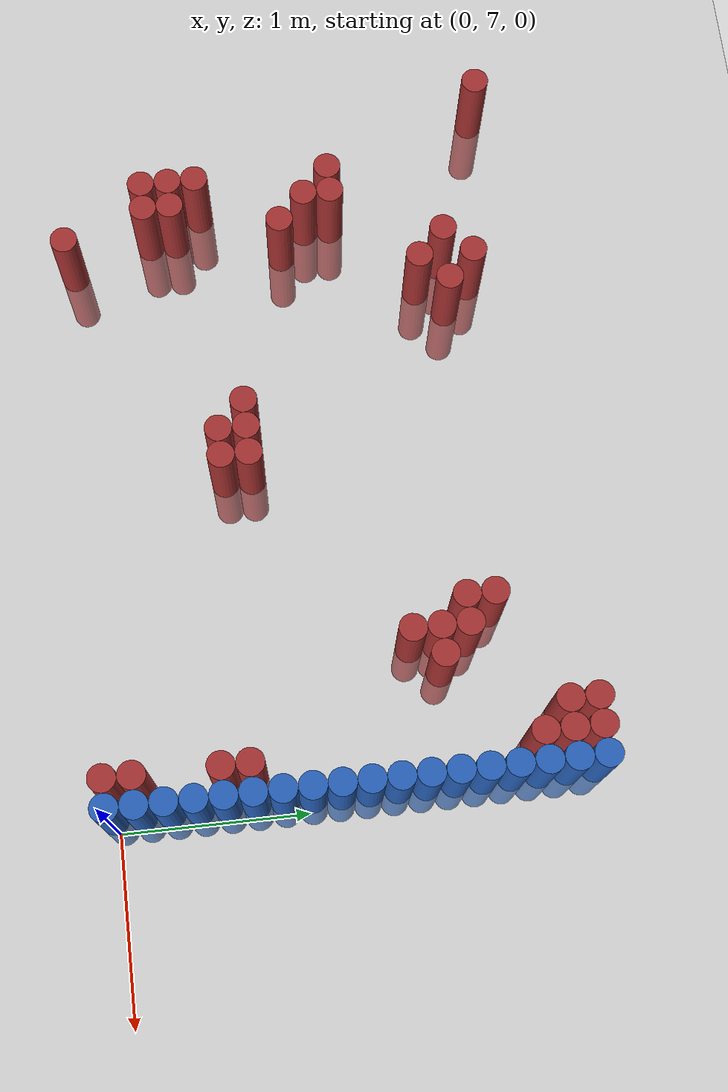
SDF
<sdf version="1.6">
 <world name="default">
  <model name="ground_plane">
   <static>1</static>
   <link name="link">
    <collision name="collision">
     <geometry><plane><normal>0 0 1</normal><size>100 100</size></plane></geometry>
     <surface><friction><ode><mu>100</mu><mu2>50</mu2></ode></friction></surface>
    </collision>
    <visual name="visual">
     <cast_shadows>0</cast_shadows>
     <geometry><plane><normal>0 0 1</normal><size>100 100</size></plane></geometry>
     <material>
      <script><uri>file://media/materials/scripts/gazebo.material</uri><name>Gazebo/Grey</name></script>
     </material>
    </visual>
   </link>
  </model>
  <model name="unit_cylinder_153">
   <static>1</static>
   <pose>-3.975000 9.375000 0.000000 0.000000 0.000000 0.000000</pose>
   <link name="link">
    <inertial>
     <mass>1</mass>
     <inertia><ixx>0.145833</ixx><ixy>0</ixy><ixz>0</ixz><iyy>0.145833</iyy><iyz>0</iyz><izz>0.125</izz></inertia>
    </inertial>
    <collision name="collision">
     <geometry><cylinder><radius>0.075000</radius><length>1</length></cylinder></geometry>
    </collision>
    <visual name="visual">
     <geometry><cylinder><radius>0.075000</radius><length>1</length></cylinder></geometry>
     <material>
      <ambient>0.648000 0.192000 0.192000 1</ambient>
      <diffuse>0.648000 0.192000 0.192000 1</diffuse>
     </material>
     <material>
      <script><name>Gazebo/Grey</name><uri>file://media/materials/scripts/gazebo.material</uri></script>
     </material>
    </visual>
   </link>
  </model>
  <model name="unit_cylinder_161">
   <static>1</static>
   <pose>-3.525000 7.425000 0.000000 0.000000 0.000000 0.000000</pose>
   <link name="link">
    <inertial>
     <mass>1</mass>
     <inertia><ixx>0.145833</ixx><ixy>0</ixy><ixz>0</ixz><iyy>0.145833</iyy><iyz>0</iyz><izz>0.125</izz></inertia>
    </inertial>
    <collision name="collision">
     <geometry><cylinder><radius>0.075000</radius><length>1</length></cylinder></geometry>
    </collision>
    <visual name="visual">
     <geometry><cylinder><radius>0.075000</radius><length>1</length></cylinder></geometry>
     <material>
      <ambient>0.648000 0.192000 0.192000 1</ambient>
      <diffuse>0.648000 0.192000 0.192000 1</diffuse>
     </material>
     <material>
      <script><name>Gazebo/Grey</name><uri>file://media/materials/scripts/gazebo.material</uri></script>
     </material>
    </visual>
   </link>
  </model>
  <model name="unit_cylinder_162">
   <static>1</static>
   <pose>-3.525000 7.575000 0.000000 0.000000 0.000000 0.000000</pose>
   <link name="link">
    <inertial>
     <mass>1</mass>
     <inertia><ixx>0.145833</ixx><ixy>0</ixy><ixz>0</ixz><iyy>0.145833</iyy><iyz>0</iyz><izz>0.125</izz></inertia>
    </inertial>
    <collision name="collision">
     <geometry><cylinder><radius>0.075000</radius><length>1</length></cylinder></geometry>
    </collision>
    <visual name="visual">
     <geometry><cylinder><radius>0.075000</radius><length>1</length></cylinder></geometry>
     <material>
      <ambient>0.648000 0.192000 0.192000 1</ambient>
      <diffuse>0.648000 0.192000 0.192000 1</diffuse>
     </material>
     <material>
      <script><name>Gazebo/Grey</name><uri>file://media/materials/scripts/gazebo.material</uri></script>
     </material>
    </visual>
   </link>
  </model>
  <model name="unit_cylinder_163">
   <static>1</static>
   <pose>-3.525000 7.725000 0.000000 0.000000 0.000000 0.000000</pose>
   <link name="link">
    <inertial>
     <mass>1</mass>
     <inertia><ixx>0.145833</ixx><ixy>0</ixy><ixz>0</ixz><iyy>0.145833</iyy><iyz>0</iyz><izz>0.125</izz></inertia>
    </inertial>
    <collision name="collision">
     <geometry><cylinder><radius>0.075000</radius><length>1</length></cylinder></geometry>
    </collision>
    <visual name="visual">
     <geometry><cylinder><radius>0.075000</radius><length>1</length></cylinder></geometry>
     <material>
      <ambient>0.648000 0.192000 0.192000 1</ambient>
      <diffuse>0.648000 0.192000 0.192000 1</diffuse>
     </material>
     <material>
      <script><name>Gazebo/Grey</name><uri>file://media/materials/scripts/gazebo.material</uri></script>
     </material>
    </visual>
   </link>
  </model>
  <model name="unit_cylinder_164">
   <static>1</static>
   <pose>-3.525000 8.475000 0.000000 0.000000 0.000000 0.000000</pose>
   <link name="link">
    <inertial>
     <mass>1</mass>
     <inertia><ixx>0.145833</ixx><ixy>0</ixy><ixz>0</ixz><iyy>0.145833</iyy><iyz>0</iyz><izz>0.125</izz></inertia>
    </inertial>
    <collision name="collision">
     <geometry><cylinder><radius>0.075000</radius><length>1</length></cylinder></geometry>
    </collision>
    <visual name="visual">
     <geometry><cylinder><radius>0.075000</radius><length>1</length></cylinder></geometry>
     <material>
      <ambient>0.648000 0.192000 0.192000 1</ambient>
      <diffuse>0.648000 0.192000 0.192000 1</diffuse>
     </material>
     <material>
      <script><name>Gazebo/Grey</name><uri>file://media/materials/scripts/gazebo.material</uri></script>
     </material>
    </visual>
   </link>
  </model>
  <model name="unit_cylinder_167">
   <static>1</static>
   <pose>-3.375000 7.425000 0.000000 0.000000 0.000000 0.000000</pose>
   <link name="link">
    <inertial>
     <mass>1</mass>
     <inertia><ixx>0.145833</ixx><ixy>0</ixy><ixz>0</ixz><iyy>0.145833</iyy><iyz>0</iyz><izz>0.125</izz></inertia>
    </inertial>
    <collision name="collision">
     <geometry><cylinder><radius>0.075000</radius><length>1</length></cylinder></geometry>
    </collision>
    <visual name="visual">
     <geometry><cylinder><radius>0.075000</radius><length>1</length></cylinder></geometry>
     <material>
      <ambient>0.648000 0.192000 0.192000 1</ambient>
      <diffuse>0.648000 0.192000 0.192000 1</diffuse>
     </material>
     <material>
      <script><name>Gazebo/Grey</name><uri>file://media/materials/scripts/gazebo.material</uri></script>
     </material>
    </visual>
   </link>
  </model>
  <model name="unit_cylinder_168">
   <static>1</static>
   <pose>-3.375000 7.575000 0.000000 0.000000 0.000000 0.000000</pose>
   <link name="link">
    <inertial>
     <mass>1</mass>
     <inertia><ixx>0.145833</ixx><ixy>0</ixy><ixz>0</ixz><iyy>0.145833</iyy><iyz>0</iyz><izz>0.125</izz></inertia>
    </inertial>
    <collision name="collision">
     <geometry><cylinder><radius>0.075000</radius><length>1</length></cylinder></geometry>
    </collision>
    <visual name="visual">
     <geometry><cylinder><radius>0.075000</radius><length>1</length></cylinder></geometry>
     <material>
      <ambient>0.648000 0.192000 0.192000 1</ambient>
      <diffuse>0.648000 0.192000 0.192000 1</diffuse>
     </material>
     <material>
      <script><name>Gazebo/Grey</name><uri>file://media/materials/scripts/gazebo.material</uri></script>
     </material>
    </visual>
   </link>
  </model>
  <model name="unit_cylinder_169">
   <static>1</static>
   <pose>-3.375000 8.325000 0.000000 0.000000 0.000000 0.000000</pose>
   <link name="link">
    <inertial>
     <mass>1</mass>
     <inertia><ixx>0.145833</ixx><ixy>0</ixy><ixz>0</ixz><iyy>0.145833</iyy><iyz>0</iyz><izz>0.125</izz></inertia>
    </inertial>
    <collision name="collision">
     <geometry><cylinder><radius>0.075000</radius><length>1</length></cylinder></geometry>
    </collision>
    <visual name="visual">
     <geometry><cylinder><radius>0.075000</radius><length>1</length></cylinder></geometry>
     <material>
      <ambient>0.648000 0.192000 0.192000 1</ambient>
      <diffuse>0.648000 0.192000 0.192000 1</diffuse>
     </material>
     <material>
      <script><name>Gazebo/Grey</name><uri>file://media/materials/scripts/gazebo.material</uri></script>
     </material>
    </visual>
   </link>
  </model>
  <model name="unit_cylinder_170">
   <static>1</static>
   <pose>-3.375000 8.475000 0.000000 0.000000 0.000000 0.000000</pose>
   <link name="link">
    <inertial>
     <mass>1</mass>
     <inertia><ixx>0.145833</ixx><ixy>0</ixy><ixz>0</ixz><iyy>0.145833</iyy><iyz>0</iyz><izz>0.125</izz></inertia>
    </inertial>
    <collision name="collision">
     <geometry><cylinder><radius>0.075000</radius><length>1</length></cylinder></geometry>
    </collision>
    <visual name="visual">
     <geometry><cylinder><radius>0.075000</radius><length>1</length></cylinder></geometry>
     <material>
      <ambient>0.648000 0.192000 0.192000 1</ambient>
      <diffuse>0.648000 0.192000 0.192000 1</diffuse>
     </material>
     <material>
      <script><name>Gazebo/Grey</name><uri>file://media/materials/scripts/gazebo.material</uri></script>
     </material>
    </visual>
   </link>
  </model>
  <model name="unit_cylinder_172">
   <static>1</static>
   <pose>-3.225000 6.975000 0.000000 0.000000 0.000000 0.000000</pose>
   <link name="link">
    <inertial>
     <mass>1</mass>
     <inertia><ixx>0.145833</ixx><ixy>0</ixy><ixz>0</ixz><iyy>0.145833</iyy><iyz>0</iyz><izz>0.125</izz></inertia>
    </inertial>
    <collision name="collision">
     <geometry><cylinder><radius>0.075000</radius><length>1</length></cylinder></geometry>
    </collision>
    <visual name="visual">
     <geometry><cylinder><radius>0.075000</radius><length>1</length></cylinder></geometry>
     <material>
      <ambient>0.648000 0.192000 0.192000 1</ambient>
      <diffuse>0.648000 0.192000 0.192000 1</diffuse>
     </material>
     <material>
      <script><name>Gazebo/Grey</name><uri>file://media/materials/scripts/gazebo.material</uri></script>
     </material>
    </visual>
   </link>
  </model>
  <model name="unit_cylinder_173">
   <static>1</static>
   <pose>-3.225000 8.175000 0.000000 0.000000 0.000000 0.000000</pose>
   <link name="link">
    <inertial>
     <mass>1</mass>
     <inertia><ixx>0.145833</ixx><ixy>0</ixy><ixz>0</ixz><iyy>0.145833</iyy><iyz>0</iyz><izz>0.125</izz></inertia>
    </inertial>
    <collision name="collision">
     <geometry><cylinder><radius>0.075000</radius><length>1</length></cylinder></geometry>
    </collision>
    <visual name="visual">
     <geometry><cylinder><radius>0.075000</radius><length>1</length></cylinder></geometry>
     <material>
      <ambient>0.648000 0.192000 0.192000 1</ambient>
      <diffuse>0.648000 0.192000 0.192000 1</diffuse>
     </material>
     <material>
      <script><name>Gazebo/Grey</name><uri>file://media/materials/scripts/gazebo.material</uri></script>
     </material>
    </visual>
   </link>
  </model>
  <model name="unit_cylinder_176">
   <static>1</static>
   <pose>-3.075000 9.075000 0.000000 0.000000 0.000000 0.000000</pose>
   <link name="link">
    <inertial>
     <mass>1</mass>
     <inertia><ixx>0.145833</ixx><ixy>0</ixy><ixz>0</ixz><iyy>0.145833</iyy><iyz>0</iyz><izz>0.125</izz></inertia>
    </inertial>
    <collision name="collision">
     <geometry><cylinder><radius>0.075000</radius><length>1</length></cylinder></geometry>
    </collision>
    <visual name="visual">
     <geometry><cylinder><radius>0.075000</radius><length>1</length></cylinder></geometry>
     <material>
      <ambient>0.648000 0.192000 0.192000 1</ambient>
      <diffuse>0.648000 0.192000 0.192000 1</diffuse>
     </material>
     <material>
      <script><name>Gazebo/Grey</name><uri>file://media/materials/scripts/gazebo.material</uri></script>
     </material>
    </visual>
   </link>
  </model>
  <model name="unit_cylinder_177">
   <static>1</static>
   <pose>-2.925000 8.925000 0.000000 0.000000 0.000000 0.000000</pose>
   <link name="link">
    <inertial>
     <mass>1</mass>
     <inertia><ixx>0.145833</ixx><ixy>0</ixy><ixz>0</ixz><iyy>0.145833</iyy><iyz>0</iyz><izz>0.125</izz></inertia>
    </inertial>
    <collision name="collision">
     <geometry><cylinder><radius>0.075000</radius><length>1</length></cylinder></geometry>
    </collision>
    <visual name="visual">
     <geometry><cylinder><radius>0.075000</radius><length>1</length></cylinder></geometry>
     <material>
      <ambient>0.648000 0.192000 0.192000 1</ambient>
      <diffuse>0.648000 0.192000 0.192000 1</diffuse>
     </material>
     <material>
      <script><name>Gazebo/Grey</name><uri>file://media/materials/scripts/gazebo.material</uri></script>
     </material>
    </visual>
   </link>
  </model>
  <model name="unit_cylinder_178">
   <static>1</static>
   <pose>-2.925000 9.225000 0.000000 0.000000 0.000000 0.000000</pose>
   <link name="link">
    <inertial>
     <mass>1</mass>
     <inertia><ixx>0.145833</ixx><ixy>0</ixy><ixz>0</ixz><iyy>0.145833</iyy><iyz>0</iyz><izz>0.125</izz></inertia>
    </inertial>
    <collision name="collision">
     <geometry><cylinder><radius>0.075000</radius><length>1</length></cylinder></geometry>
    </collision>
    <visual name="visual">
     <geometry><cylinder><radius>0.075000</radius><length>1</length></cylinder></geometry>
     <material>
      <ambient>0.648000 0.192000 0.192000 1</ambient>
      <diffuse>0.648000 0.192000 0.192000 1</diffuse>
     </material>
     <material>
      <script><name>Gazebo/Grey</name><uri>file://media/materials/scripts/gazebo.material</uri></script>
     </material>
    </visual>
   </link>
  </model>
  <model name="unit_cylinder_179">
   <static>1</static>
   <pose>-2.775000 9.075000 0.000000 0.000000 0.000000 0.000000</pose>
   <link name="link">
    <inertial>
     <mass>1</mass>
     <inertia><ixx>0.145833</ixx><ixy>0</ixy><ixz>0</ixz><iyy>0.145833</iyy><iyz>0</iyz><izz>0.125</izz></inertia>
    </inertial>
    <collision name="collision">
     <geometry><cylinder><radius>0.075000</radius><length>1</length></cylinder></geometry>
    </collision>
    <visual name="visual">
     <geometry><cylinder><radius>0.075000</radius><length>1</length></cylinder></geometry>
     <material>
      <ambient>0.648000 0.192000 0.192000 1</ambient>
      <diffuse>0.648000 0.192000 0.192000 1</diffuse>
     </material>
     <material>
      <script><name>Gazebo/Grey</name><uri>file://media/materials/scripts/gazebo.material</uri></script>
     </material>
    </visual>
   </link>
  </model>
  <model name="unit_cylinder_180">
   <static>1</static>
   <pose>-2.175000 7.875000 0.000000 0.000000 0.000000 0.000000</pose>
   <link name="link">
    <inertial>
     <mass>1</mass>
     <inertia><ixx>0.145833</ixx><ixy>0</ixy><ixz>0</ixz><iyy>0.145833</iyy><iyz>0</iyz><izz>0.125</izz></inertia>
    </inertial>
    <collision name="collision">
     <geometry><cylinder><radius>0.075000</radius><length>1</length></cylinder></geometry>
    </collision>
    <visual name="visual">
     <geometry><cylinder><radius>0.075000</radius><length>1</length></cylinder></geometry>
     <material>
      <ambient>0.648000 0.192000 0.192000 1</ambient>
      <diffuse>0.648000 0.192000 0.192000 1</diffuse>
     </material>
     <material>
      <script><name>Gazebo/Grey</name><uri>file://media/materials/scripts/gazebo.material</uri></script>
     </material>
    </visual>
   </link>
  </model>
  <model name="unit_cylinder_181">
   <static>1</static>
   <pose>-2.025000 7.725000 0.000000 0.000000 0.000000 0.000000</pose>
   <link name="link">
    <inertial>
     <mass>1</mass>
     <inertia><ixx>0.145833</ixx><ixy>0</ixy><ixz>0</ixz><iyy>0.145833</iyy><iyz>0</iyz><izz>0.125</izz></inertia>
    </inertial>
    <collision name="collision">
     <geometry><cylinder><radius>0.075000</radius><length>1</length></cylinder></geometry>
    </collision>
    <visual name="visual">
     <geometry><cylinder><radius>0.075000</radius><length>1</length></cylinder></geometry>
     <material>
      <ambient>0.648000 0.192000 0.192000 1</ambient>
      <diffuse>0.648000 0.192000 0.192000 1</diffuse>
     </material>
     <material>
      <script><name>Gazebo/Grey</name><uri>file://media/materials/scripts/gazebo.material</uri></script>
     </material>
    </visual>
   </link>
  </model>
  <model name="unit_cylinder_182">
   <static>1</static>
   <pose>-2.025000 7.875000 0.000000 0.000000 0.000000 0.000000</pose>
   <link name="link">
    <inertial>
     <mass>1</mass>
     <inertia><ixx>0.145833</ixx><ixy>0</ixy><ixz>0</ixz><iyy>0.145833</iyy><iyz>0</iyz><izz>0.125</izz></inertia>
    </inertial>
    <collision name="collision">
     <geometry><cylinder><radius>0.075000</radius><length>1</length></cylinder></geometry>
    </collision>
    <visual name="visual">
     <geometry><cylinder><radius>0.075000</radius><length>1</length></cylinder></geometry>
     <material>
      <ambient>0.648000 0.192000 0.192000 1</ambient>
      <diffuse>0.648000 0.192000 0.192000 1</diffuse>
     </material>
     <material>
      <script><name>Gazebo/Grey</name><uri>file://media/materials/scripts/gazebo.material</uri></script>
     </material>
    </visual>
   </link>
  </model>
  <model name="unit_cylinder_186">
   <static>1</static>
   <pose>-1.875000 7.725000 0.000000 0.000000 0.000000 0.000000</pose>
   <link name="link">
    <inertial>
     <mass>1</mass>
     <inertia><ixx>0.145833</ixx><ixy>0</ixy><ixz>0</ixz><iyy>0.145833</iyy><iyz>0</iyz><izz>0.125</izz></inertia>
    </inertial>
    <collision name="collision">
     <geometry><cylinder><radius>0.075000</radius><length>1</length></cylinder></geometry>
    </collision>
    <visual name="visual">
     <geometry><cylinder><radius>0.075000</radius><length>1</length></cylinder></geometry>
     <material>
      <ambient>0.648000 0.192000 0.192000 1</ambient>
      <diffuse>0.648000 0.192000 0.192000 1</diffuse>
     </material>
     <material>
      <script><name>Gazebo/Grey</name><uri>file://media/materials/scripts/gazebo.material</uri></script>
     </material>
    </visual>
   </link>
  </model>
  <model name="unit_cylinder_187">
   <static>1</static>
   <pose>-1.875000 7.875000 0.000000 0.000000 0.000000 0.000000</pose>
   <link name="link">
    <inertial>
     <mass>1</mass>
     <inertia><ixx>0.145833</ixx><ixy>0</ixy><ixz>0</ixz><iyy>0.145833</iyy><iyz>0</iyz><izz>0.125</izz></inertia>
    </inertial>
    <collision name="collision">
     <geometry><cylinder><radius>0.075000</radius><length>1</length></cylinder></geometry>
    </collision>
    <visual name="visual">
     <geometry><cylinder><radius>0.075000</radius><length>1</length></cylinder></geometry>
     <material>
      <ambient>0.648000 0.192000 0.192000 1</ambient>
      <diffuse>0.648000 0.192000 0.192000 1</diffuse>
     </material>
     <material>
      <script><name>Gazebo/Grey</name><uri>file://media/materials/scripts/gazebo.material</uri></script>
     </material>
    </visual>
   </link>
  </model>
  <model name="unit_cylinder_199">
   <static>1</static>
   <pose>-0.975000 8.925000 0.000000 0.000000 0.000000 0.000000</pose>
   <link name="link">
    <inertial>
     <mass>1</mass>
     <inertia><ixx>0.145833</ixx><ixy>0</ixy><ixz>0</ixz><iyy>0.145833</iyy><iyz>0</iyz><izz>0.125</izz></inertia>
    </inertial>
    <collision name="collision">
     <geometry><cylinder><radius>0.075000</radius><length>1</length></cylinder></geometry>
    </collision>
    <visual name="visual">
     <geometry><cylinder><radius>0.075000</radius><length>1</length></cylinder></geometry>
     <material>
      <ambient>0.648000 0.192000 0.192000 1</ambient>
      <diffuse>0.648000 0.192000 0.192000 1</diffuse>
     </material>
     <material>
      <script><name>Gazebo/Grey</name><uri>file://media/materials/scripts/gazebo.material</uri></script>
     </material>
    </visual>
   </link>
  </model>
  <model name="unit_cylinder_200">
   <static>1</static>
   <pose>-0.975000 9.075000 0.000000 0.000000 0.000000 0.000000</pose>
   <link name="link">
    <inertial>
     <mass>1</mass>
     <inertia><ixx>0.145833</ixx><ixy>0</ixy><ixz>0</ixz><iyy>0.145833</iyy><iyz>0</iyz><izz>0.125</izz></inertia>
    </inertial>
    <collision name="collision">
     <geometry><cylinder><radius>0.075000</radius><length>1</length></cylinder></geometry>
    </collision>
    <visual name="visual">
     <geometry><cylinder><radius>0.075000</radius><length>1</length></cylinder></geometry>
     <material>
      <ambient>0.648000 0.192000 0.192000 1</ambient>
      <diffuse>0.648000 0.192000 0.192000 1</diffuse>
     </material>
     <material>
      <script><name>Gazebo/Grey</name><uri>file://media/materials/scripts/gazebo.material</uri></script>
     </material>
    </visual>
   </link>
  </model>
  <model name="unit_cylinder_204">
   <static>1</static>
   <pose>-0.825000 8.625000 0.000000 0.000000 0.000000 0.000000</pose>
   <link name="link">
    <inertial>
     <mass>1</mass>
     <inertia><ixx>0.145833</ixx><ixy>0</ixy><ixz>0</ixz><iyy>0.145833</iyy><iyz>0</iyz><izz>0.125</izz></inertia>
    </inertial>
    <collision name="collision">
     <geometry><cylinder><radius>0.075000</radius><length>1</length></cylinder></geometry>
    </collision>
    <visual name="visual">
     <geometry><cylinder><radius>0.075000</radius><length>1</length></cylinder></geometry>
     <material>
      <ambient>0.648000 0.192000 0.192000 1</ambient>
      <diffuse>0.648000 0.192000 0.192000 1</diffuse>
     </material>
     <material>
      <script><name>Gazebo/Grey</name><uri>file://media/materials/scripts/gazebo.material</uri></script>
     </material>
    </visual>
   </link>
  </model>
  <model name="unit_cylinder_205">
   <static>1</static>
   <pose>-0.825000 8.775000 0.000000 0.000000 0.000000 0.000000</pose>
   <link name="link">
    <inertial>
     <mass>1</mass>
     <inertia><ixx>0.145833</ixx><ixy>0</ixy><ixz>0</ixz><iyy>0.145833</iyy><iyz>0</iyz><izz>0.125</izz></inertia>
    </inertial>
    <collision name="collision">
     <geometry><cylinder><radius>0.075000</radius><length>1</length></cylinder></geometry>
    </collision>
    <visual name="visual">
     <geometry><cylinder><radius>0.075000</radius><length>1</length></cylinder></geometry>
     <material>
      <ambient>0.648000 0.192000 0.192000 1</ambient>
      <diffuse>0.648000 0.192000 0.192000 1</diffuse>
     </material>
     <material>
      <script><name>Gazebo/Grey</name><uri>file://media/materials/scripts/gazebo.material</uri></script>
     </material>
    </visual>
   </link>
  </model>
  <model name="unit_cylinder_206">
   <static>1</static>
   <pose>-0.825000 8.925000 0.000000 0.000000 0.000000 0.000000</pose>
   <link name="link">
    <inertial>
     <mass>1</mass>
     <inertia><ixx>0.145833</ixx><ixy>0</ixy><ixz>0</ixz><iyy>0.145833</iyy><iyz>0</iyz><izz>0.125</izz></inertia>
    </inertial>
    <collision name="collision">
     <geometry><cylinder><radius>0.075000</radius><length>1</length></cylinder></geometry>
    </collision>
    <visual name="visual">
     <geometry><cylinder><radius>0.075000</radius><length>1</length></cylinder></geometry>
     <material>
      <ambient>0.648000 0.192000 0.192000 1</ambient>
      <diffuse>0.648000 0.192000 0.192000 1</diffuse>
     </material>
     <material>
      <script><name>Gazebo/Grey</name><uri>file://media/materials/scripts/gazebo.material</uri></script>
     </material>
    </visual>
   </link>
  </model>
  <model name="unit_cylinder_209">
   <static>1</static>
   <pose>-0.675000 8.775000 0.000000 0.000000 0.000000 0.000000</pose>
   <link name="link">
    <inertial>
     <mass>1</mass>
     <inertia><ixx>0.145833</ixx><ixy>0</ixy><ixz>0</ixz><iyy>0.145833</iyy><iyz>0</iyz><izz>0.125</izz></inertia>
    </inertial>
    <collision name="collision">
     <geometry><cylinder><radius>0.075000</radius><length>1</length></cylinder></geometry>
    </collision>
    <visual name="visual">
     <geometry><cylinder><radius>0.075000</radius><length>1</length></cylinder></geometry>
     <material>
      <ambient>0.648000 0.192000 0.192000 1</ambient>
      <diffuse>0.648000 0.192000 0.192000 1</diffuse>
     </material>
     <material>
      <script><name>Gazebo/Grey</name><uri>file://media/materials/scripts/gazebo.material</uri></script>
     </material>
    </visual>
   </link>
  </model>
  <model name="unit_cylinder_215">
   <static>1</static>
   <pose>-0.375000 9.375000 0.000000 0.000000 0.000000 0.000000</pose>
   <link name="link">
    <inertial>
     <mass>1</mass>
     <inertia><ixx>0.145833</ixx><ixy>0</ixy><ixz>0</ixz><iyy>0.145833</iyy><iyz>0</iyz><izz>0.125</izz></inertia>
    </inertial>
    <collision name="collision">
     <geometry><cylinder><radius>0.075000</radius><length>1</length></cylinder></geometry>
    </collision>
    <visual name="visual">
     <geometry><cylinder><radius>0.075000</radius><length>1</length></cylinder></geometry>
     <material>
      <ambient>0.648000 0.192000 0.192000 1</ambient>
      <diffuse>0.648000 0.192000 0.192000 1</diffuse>
     </material>
     <material>
      <script><name>Gazebo/Grey</name><uri>file://media/materials/scripts/gazebo.material</uri></script>
     </material>
    </visual>
   </link>
  </model>
  <model name="unit_cylinder_216">
   <static>1</static>
   <pose>-0.375000 9.525000 0.000000 0.000000 0.000000 0.000000</pose>
   <link name="link">
    <inertial>
     <mass>1</mass>
     <inertia><ixx>0.145833</ixx><ixy>0</ixy><ixz>0</ixz><iyy>0.145833</iyy><iyz>0</iyz><izz>0.125</izz></inertia>
    </inertial>
    <collision name="collision">
     <geometry><cylinder><radius>0.075000</radius><length>1</length></cylinder></geometry>
    </collision>
    <visual name="visual">
     <geometry><cylinder><radius>0.075000</radius><length>1</length></cylinder></geometry>
     <material>
      <ambient>0.648000 0.192000 0.192000 1</ambient>
      <diffuse>0.648000 0.192000 0.192000 1</diffuse>
     </material>
     <material>
      <script><name>Gazebo/Grey</name><uri>file://media/materials/scripts/gazebo.material</uri></script>
     </material>
    </visual>
   </link>
  </model>
  <model name="unit_cylinder_226">
   <static>1</static>
   <pose>-0.225000 6.975000 0.000000 0.000000 0.000000 0.000000</pose>
   <link name="link">
    <inertial>
     <mass>1</mass>
     <inertia><ixx>0.145833</ixx><ixy>0</ixy><ixz>0</ixz><iyy>0.145833</iyy><iyz>0</iyz><izz>0.125</izz></inertia>
    </inertial>
    <collision name="collision">
     <geometry><cylinder><radius>0.075000</radius><length>1</length></cylinder></geometry>
    </collision>
    <visual name="visual">
     <geometry><cylinder><radius>0.075000</radius><length>1</length></cylinder></geometry>
     <material>
      <ambient>0.648000 0.192000 0.192000 1</ambient>
      <diffuse>0.648000 0.192000 0.192000 1</diffuse>
     </material>
     <material>
      <script><name>Gazebo/Grey</name><uri>file://media/materials/scripts/gazebo.material</uri></script>
     </material>
    </visual>
   </link>
  </model>
  <model name="unit_cylinder_227">
   <static>1</static>
   <pose>-0.225000 7.125000 0.000000 0.000000 0.000000 0.000000</pose>
   <link name="link">
    <inertial>
     <mass>1</mass>
     <inertia><ixx>0.145833</ixx><ixy>0</ixy><ixz>0</ixz><iyy>0.145833</iyy><iyz>0</iyz><izz>0.125</izz></inertia>
    </inertial>
    <collision name="collision">
     <geometry><cylinder><radius>0.075000</radius><length>1</length></cylinder></geometry>
    </collision>
    <visual name="visual">
     <geometry><cylinder><radius>0.075000</radius><length>1</length></cylinder></geometry>
     <material>
      <ambient>0.648000 0.192000 0.192000 1</ambient>
      <diffuse>0.648000 0.192000 0.192000 1</diffuse>
     </material>
     <material>
      <script><name>Gazebo/Grey</name><uri>file://media/materials/scripts/gazebo.material</uri></script>
     </material>
    </visual>
   </link>
  </model>
  <model name="unit_cylinder_228">
   <static>1</static>
   <pose>-0.225000 7.575000 0.000000 0.000000 0.000000 0.000000</pose>
   <link name="link">
    <inertial>
     <mass>1</mass>
     <inertia><ixx>0.145833</ixx><ixy>0</ixy><ixz>0</ixz><iyy>0.145833</iyy><iyz>0</iyz><izz>0.125</izz></inertia>
    </inertial>
    <collision name="collision">
     <geometry><cylinder><radius>0.075000</radius><length>1</length></cylinder></geometry>
    </collision>
    <visual name="visual">
     <geometry><cylinder><radius>0.075000</radius><length>1</length></cylinder></geometry>
     <material>
      <ambient>0.648000 0.192000 0.192000 1</ambient>
      <diffuse>0.648000 0.192000 0.192000 1</diffuse>
     </material>
     <material>
      <script><name>Gazebo/Grey</name><uri>file://media/materials/scripts/gazebo.material</uri></script>
     </material>
    </visual>
   </link>
  </model>
  <model name="unit_cylinder_229">
   <static>1</static>
   <pose>-0.225000 7.725000 0.000000 0.000000 0.000000 0.000000</pose>
   <link name="link">
    <inertial>
     <mass>1</mass>
     <inertia><ixx>0.145833</ixx><ixy>0</ixy><ixz>0</ixz><iyy>0.145833</iyy><iyz>0</iyz><izz>0.125</izz></inertia>
    </inertial>
    <collision name="collision">
     <geometry><cylinder><radius>0.075000</radius><length>1</length></cylinder></geometry>
    </collision>
    <visual name="visual">
     <geometry><cylinder><radius>0.075000</radius><length>1</length></cylinder></geometry>
     <material>
      <ambient>0.648000 0.192000 0.192000 1</ambient>
      <diffuse>0.648000 0.192000 0.192000 1</diffuse>
     </material>
     <material>
      <script><name>Gazebo/Grey</name><uri>file://media/materials/scripts/gazebo.material</uri></script>
     </material>
    </visual>
   </link>
  </model>
  <model name="unit_cylinder_230">
   <static>1</static>
   <pose>-0.225000 9.225000 0.000000 0.000000 0.000000 0.000000</pose>
   <link name="link">
    <inertial>
     <mass>1</mass>
     <inertia><ixx>0.145833</ixx><ixy>0</ixy><ixz>0</ixz><iyy>0.145833</iyy><iyz>0</iyz><izz>0.125</izz></inertia>
    </inertial>
    <collision name="collision">
     <geometry><cylinder><radius>0.075000</radius><length>1</length></cylinder></geometry>
    </collision>
    <visual name="visual">
     <geometry><cylinder><radius>0.075000</radius><length>1</length></cylinder></geometry>
     <material>
      <ambient>0.648000 0.192000 0.192000 1</ambient>
      <diffuse>0.648000 0.192000 0.192000 1</diffuse>
     </material>
     <material>
      <script><name>Gazebo/Grey</name><uri>file://media/materials/scripts/gazebo.material</uri></script>
     </material>
    </visual>
   </link>
  </model>
  <model name="unit_cylinder_231">
   <static>1</static>
   <pose>-0.225000 9.375000 0.000000 0.000000 0.000000 0.000000</pose>
   <link name="link">
    <inertial>
     <mass>1</mass>
     <inertia><ixx>0.145833</ixx><ixy>0</ixy><ixz>0</ixz><iyy>0.145833</iyy><iyz>0</iyz><izz>0.125</izz></inertia>
    </inertial>
    <collision name="collision">
     <geometry><cylinder><radius>0.075000</radius><length>1</length></cylinder></geometry>
    </collision>
    <visual name="visual">
     <geometry><cylinder><radius>0.075000</radius><length>1</length></cylinder></geometry>
     <material>
      <ambient>0.648000 0.192000 0.192000 1</ambient>
      <diffuse>0.648000 0.192000 0.192000 1</diffuse>
     </material>
     <material>
      <script><name>Gazebo/Grey</name><uri>file://media/materials/scripts/gazebo.material</uri></script>
     </material>
    </visual>
   </link>
  </model>
  <model name="unit_cylinder_232">
   <static>1</static>
   <pose>-0.225000 9.525000 0.000000 0.000000 0.000000 0.000000</pose>
   <link name="link">
    <inertial>
     <mass>1</mass>
     <inertia><ixx>0.145833</ixx><ixy>0</ixy><ixz>0</ixz><iyy>0.145833</iyy><iyz>0</iyz><izz>0.125</izz></inertia>
    </inertial>
    <collision name="collision">
     <geometry><cylinder><radius>0.075000</radius><length>1</length></cylinder></geometry>
    </collision>
    <visual name="visual">
     <geometry><cylinder><radius>0.075000</radius><length>1</length></cylinder></geometry>
     <material>
      <ambient>0.648000 0.192000 0.192000 1</ambient>
      <diffuse>0.648000 0.192000 0.192000 1</diffuse>
     </material>
     <material>
      <script><name>Gazebo/Grey</name><uri>file://media/materials/scripts/gazebo.material</uri></script>
     </material>
    </visual>
   </link>
  </model>
  <model name="unit_cylinder_245">
   <static>1</static>
   <pose>-0.075000 6.975000 0.000000 0.000000 0.000000 0.000000</pose>
   <link name="link">
    <inertial>
     <mass>1</mass>
     <inertia><ixx>0.145833</ixx><ixy>0</ixy><ixz>0</ixz><iyy>0.145833</iyy><iyz>0</iyz><izz>0.125</izz></inertia>
    </inertial>
    <collision name="collision">
     <geometry><cylinder><radius>0.075000</radius><length>1</length></cylinder></geometry>
    </collision>
    <visual name="visual">
     <geometry><cylinder><radius>0.075000</radius><length>1</length></cylinder></geometry>
     <material>
      <ambient>0.152000 0.379000 0.720000 1</ambient>
      <diffuse>0.152000 0.379000 0.720000 1</diffuse>
     </material>
     <material>
      <script><name>Gazebo/Grey</name><uri>file://media/materials/scripts/gazebo.material</uri></script>
     </material>
    </visual>
   </link>
  </model>
  <model name="unit_cylinder_246">
   <static>1</static>
   <pose>-0.075000 7.125000 0.000000 0.000000 0.000000 0.000000</pose>
   <link name="link">
    <inertial>
     <mass>1</mass>
     <inertia><ixx>0.145833</ixx><ixy>0</ixy><ixz>0</ixz><iyy>0.145833</iyy><iyz>0</iyz><izz>0.125</izz></inertia>
    </inertial>
    <collision name="collision">
     <geometry><cylinder><radius>0.075000</radius><length>1</length></cylinder></geometry>
    </collision>
    <visual name="visual">
     <geometry><cylinder><radius>0.075000</radius><length>1</length></cylinder></geometry>
     <material>
      <ambient>0.152000 0.379000 0.720000 1</ambient>
      <diffuse>0.152000 0.379000 0.720000 1</diffuse>
     </material>
     <material>
      <script><name>Gazebo/Grey</name><uri>file://media/materials/scripts/gazebo.material</uri></script>
     </material>
    </visual>
   </link>
  </model>
  <model name="unit_cylinder_247">
   <static>1</static>
   <pose>-0.075000 7.275000 0.000000 0.000000 0.000000 0.000000</pose>
   <link name="link">
    <inertial>
     <mass>1</mass>
     <inertia><ixx>0.145833</ixx><ixy>0</ixy><ixz>0</ixz><iyy>0.145833</iyy><iyz>0</iyz><izz>0.125</izz></inertia>
    </inertial>
    <collision name="collision">
     <geometry><cylinder><radius>0.075000</radius><length>1</length></cylinder></geometry>
    </collision>
    <visual name="visual">
     <geometry><cylinder><radius>0.075000</radius><length>1</length></cylinder></geometry>
     <material>
      <ambient>0.152000 0.379000 0.720000 1</ambient>
      <diffuse>0.152000 0.379000 0.720000 1</diffuse>
     </material>
     <material>
      <script><name>Gazebo/Grey</name><uri>file://media/materials/scripts/gazebo.material</uri></script>
     </material>
    </visual>
   </link>
  </model>
  <model name="unit_cylinder_248">
   <static>1</static>
   <pose>-0.075000 7.425000 0.000000 0.000000 0.000000 0.000000</pose>
   <link name="link">
    <inertial>
     <mass>1</mass>
     <inertia><ixx>0.145833</ixx><ixy>0</ixy><ixz>0</ixz><iyy>0.145833</iyy><iyz>0</iyz><izz>0.125</izz></inertia>
    </inertial>
    <collision name="collision">
     <geometry><cylinder><radius>0.075000</radius><length>1</length></cylinder></geometry>
    </collision>
    <visual name="visual">
     <geometry><cylinder><radius>0.075000</radius><length>1</length></cylinder></geometry>
     <material>
      <ambient>0.152000 0.379000 0.720000 1</ambient>
      <diffuse>0.152000 0.379000 0.720000 1</diffuse>
     </material>
     <material>
      <script><name>Gazebo/Grey</name><uri>file://media/materials/scripts/gazebo.material</uri></script>
     </material>
    </visual>
   </link>
  </model>
  <model name="unit_cylinder_249">
   <static>1</static>
   <pose>-0.075000 7.575000 0.000000 0.000000 0.000000 0.000000</pose>
   <link name="link">
    <inertial>
     <mass>1</mass>
     <inertia><ixx>0.145833</ixx><ixy>0</ixy><ixz>0</ixz><iyy>0.145833</iyy><iyz>0</iyz><izz>0.125</izz></inertia>
    </inertial>
    <collision name="collision">
     <geometry><cylinder><radius>0.075000</radius><length>1</length></cylinder></geometry>
    </collision>
    <visual name="visual">
     <geometry><cylinder><radius>0.075000</radius><length>1</length></cylinder></geometry>
     <material>
      <ambient>0.152000 0.379000 0.720000 1</ambient>
      <diffuse>0.152000 0.379000 0.720000 1</diffuse>
     </material>
     <material>
      <script><name>Gazebo/Grey</name><uri>file://media/materials/scripts/gazebo.material</uri></script>
     </material>
    </visual>
   </link>
  </model>
  <model name="unit_cylinder_250">
   <static>1</static>
   <pose>-0.075000 7.725000 0.000000 0.000000 0.000000 0.000000</pose>
   <link name="link">
    <inertial>
     <mass>1</mass>
     <inertia><ixx>0.145833</ixx><ixy>0</ixy><ixz>0</ixz><iyy>0.145833</iyy><iyz>0</iyz><izz>0.125</izz></inertia>
    </inertial>
    <collision name="collision">
     <geometry><cylinder><radius>0.075000</radius><length>1</length></cylinder></geometry>
    </collision>
    <visual name="visual">
     <geometry><cylinder><radius>0.075000</radius><length>1</length></cylinder></geometry>
     <material>
      <ambient>0.152000 0.379000 0.720000 1</ambient>
      <diffuse>0.152000 0.379000 0.720000 1</diffuse>
     </material>
     <material>
      <script><name>Gazebo/Grey</name><uri>file://media/materials/scripts/gazebo.material</uri></script>
     </material>
    </visual>
   </link>
  </model>
  <model name="unit_cylinder_251">
   <static>1</static>
   <pose>-0.075000 7.875000 0.000000 0.000000 0.000000 0.000000</pose>
   <link name="link">
    <inertial>
     <mass>1</mass>
     <inertia><ixx>0.145833</ixx><ixy>0</ixy><ixz>0</ixz><iyy>0.145833</iyy><iyz>0</iyz><izz>0.125</izz></inertia>
    </inertial>
    <collision name="collision">
     <geometry><cylinder><radius>0.075000</radius><length>1</length></cylinder></geometry>
    </collision>
    <visual name="visual">
     <geometry><cylinder><radius>0.075000</radius><length>1</length></cylinder></geometry>
     <material>
      <ambient>0.152000 0.379000 0.720000 1</ambient>
      <diffuse>0.152000 0.379000 0.720000 1</diffuse>
     </material>
     <material>
      <script><name>Gazebo/Grey</name><uri>file://media/materials/scripts/gazebo.material</uri></script>
     </material>
    </visual>
   </link>
  </model>
  <model name="unit_cylinder_252">
   <static>1</static>
   <pose>-0.075000 8.025000 0.000000 0.000000 0.000000 0.000000</pose>
   <link name="link">
    <inertial>
     <mass>1</mass>
     <inertia><ixx>0.145833</ixx><ixy>0</ixy><ixz>0</ixz><iyy>0.145833</iyy><iyz>0</iyz><izz>0.125</izz></inertia>
    </inertial>
    <collision name="collision">
     <geometry><cylinder><radius>0.075000</radius><length>1</length></cylinder></geometry>
    </collision>
    <visual name="visual">
     <geometry><cylinder><radius>0.075000</radius><length>1</length></cylinder></geometry>
     <material>
      <ambient>0.152000 0.379000 0.720000 1</ambient>
      <diffuse>0.152000 0.379000 0.720000 1</diffuse>
     </material>
     <material>
      <script><name>Gazebo/Grey</name><uri>file://media/materials/scripts/gazebo.material</uri></script>
     </material>
    </visual>
   </link>
  </model>
  <model name="unit_cylinder_253">
   <static>1</static>
   <pose>-0.075000 8.175000 0.000000 0.000000 0.000000 0.000000</pose>
   <link name="link">
    <inertial>
     <mass>1</mass>
     <inertia><ixx>0.145833</ixx><ixy>0</ixy><ixz>0</ixz><iyy>0.145833</iyy><iyz>0</iyz><izz>0.125</izz></inertia>
    </inertial>
    <collision name="collision">
     <geometry><cylinder><radius>0.075000</radius><length>1</length></cylinder></geometry>
    </collision>
    <visual name="visual">
     <geometry><cylinder><radius>0.075000</radius><length>1</length></cylinder></geometry>
     <material>
      <ambient>0.152000 0.379000 0.720000 1</ambient>
      <diffuse>0.152000 0.379000 0.720000 1</diffuse>
     </material>
     <material>
      <script><name>Gazebo/Grey</name><uri>file://media/materials/scripts/gazebo.material</uri></script>
     </material>
    </visual>
   </link>
  </model>
  <model name="unit_cylinder_254">
   <static>1</static>
   <pose>-0.075000 8.325000 0.000000 0.000000 0.000000 0.000000</pose>
   <link name="link">
    <inertial>
     <mass>1</mass>
     <inertia><ixx>0.145833</ixx><ixy>0</ixy><ixz>0</ixz><iyy>0.145833</iyy><iyz>0</iyz><izz>0.125</izz></inertia>
    </inertial>
    <collision name="collision">
     <geometry><cylinder><radius>0.075000</radius><length>1</length></cylinder></geometry>
    </collision>
    <visual name="visual">
     <geometry><cylinder><radius>0.075000</radius><length>1</length></cylinder></geometry>
     <material>
      <ambient>0.152000 0.379000 0.720000 1</ambient>
      <diffuse>0.152000 0.379000 0.720000 1</diffuse>
     </material>
     <material>
      <script><name>Gazebo/Grey</name><uri>file://media/materials/scripts/gazebo.material</uri></script>
     </material>
    </visual>
   </link>
  </model>
  <model name="unit_cylinder_255">
   <static>1</static>
   <pose>-0.075000 8.475000 0.000000 0.000000 0.000000 0.000000</pose>
   <link name="link">
    <inertial>
     <mass>1</mass>
     <inertia><ixx>0.145833</ixx><ixy>0</ixy><ixz>0</ixz><iyy>0.145833</iyy><iyz>0</iyz><izz>0.125</izz></inertia>
    </inertial>
    <collision name="collision">
     <geometry><cylinder><radius>0.075000</radius><length>1</length></cylinder></geometry>
    </collision>
    <visual name="visual">
     <geometry><cylinder><radius>0.075000</radius><length>1</length></cylinder></geometry>
     <material>
      <ambient>0.152000 0.379000 0.720000 1</ambient>
      <diffuse>0.152000 0.379000 0.720000 1</diffuse>
     </material>
     <material>
      <script><name>Gazebo/Grey</name><uri>file://media/materials/scripts/gazebo.material</uri></script>
     </material>
    </visual>
   </link>
  </model>
  <model name="unit_cylinder_256">
   <static>1</static>
   <pose>-0.075000 8.625000 0.000000 0.000000 0.000000 0.000000</pose>
   <link name="link">
    <inertial>
     <mass>1</mass>
     <inertia><ixx>0.145833</ixx><ixy>0</ixy><ixz>0</ixz><iyy>0.145833</iyy><iyz>0</iyz><izz>0.125</izz></inertia>
    </inertial>
    <collision name="collision">
     <geometry><cylinder><radius>0.075000</radius><length>1</length></cylinder></geometry>
    </collision>
    <visual name="visual">
     <geometry><cylinder><radius>0.075000</radius><length>1</length></cylinder></geometry>
     <material>
      <ambient>0.152000 0.379000 0.720000 1</ambient>
      <diffuse>0.152000 0.379000 0.720000 1</diffuse>
     </material>
     <material>
      <script><name>Gazebo/Grey</name><uri>file://media/materials/scripts/gazebo.material</uri></script>
     </material>
    </visual>
   </link>
  </model>
  <model name="unit_cylinder_257">
   <static>1</static>
   <pose>-0.075000 8.775000 0.000000 0.000000 0.000000 0.000000</pose>
   <link name="link">
    <inertial>
     <mass>1</mass>
     <inertia><ixx>0.145833</ixx><ixy>0</ixy><ixz>0</ixz><iyy>0.145833</iyy><iyz>0</iyz><izz>0.125</izz></inertia>
    </inertial>
    <collision name="collision">
     <geometry><cylinder><radius>0.075000</radius><length>1</length></cylinder></geometry>
    </collision>
    <visual name="visual">
     <geometry><cylinder><radius>0.075000</radius><length>1</length></cylinder></geometry>
     <material>
      <ambient>0.152000 0.379000 0.720000 1</ambient>
      <diffuse>0.152000 0.379000 0.720000 1</diffuse>
     </material>
     <material>
      <script><name>Gazebo/Grey</name><uri>file://media/materials/scripts/gazebo.material</uri></script>
     </material>
    </visual>
   </link>
  </model>
  <model name="unit_cylinder_258">
   <static>1</static>
   <pose>-0.075000 8.925000 0.000000 0.000000 0.000000 0.000000</pose>
   <link name="link">
    <inertial>
     <mass>1</mass>
     <inertia><ixx>0.145833</ixx><ixy>0</ixy><ixz>0</ixz><iyy>0.145833</iyy><iyz>0</iyz><izz>0.125</izz></inertia>
    </inertial>
    <collision name="collision">
     <geometry><cylinder><radius>0.075000</radius><length>1</length></cylinder></geometry>
    </collision>
    <visual name="visual">
     <geometry><cylinder><radius>0.075000</radius><length>1</length></cylinder></geometry>
     <material>
      <ambient>0.152000 0.379000 0.720000 1</ambient>
      <diffuse>0.152000 0.379000 0.720000 1</diffuse>
     </material>
     <material>
      <script><name>Gazebo/Grey</name><uri>file://media/materials/scripts/gazebo.material</uri></script>
     </material>
    </visual>
   </link>
  </model>
  <model name="unit_cylinder_259">
   <static>1</static>
   <pose>-0.075000 9.075000 0.000000 0.000000 0.000000 0.000000</pose>
   <link name="link">
    <inertial>
     <mass>1</mass>
     <inertia><ixx>0.145833</ixx><ixy>0</ixy><ixz>0</ixz><iyy>0.145833</iyy><iyz>0</iyz><izz>0.125</izz></inertia>
    </inertial>
    <collision name="collision">
     <geometry><cylinder><radius>0.075000</radius><length>1</length></cylinder></geometry>
    </collision>
    <visual name="visual">
     <geometry><cylinder><radius>0.075000</radius><length>1</length></cylinder></geometry>
     <material>
      <ambient>0.152000 0.379000 0.720000 1</ambient>
      <diffuse>0.152000 0.379000 0.720000 1</diffuse>
     </material>
     <material>
      <script><name>Gazebo/Grey</name><uri>file://media/materials/scripts/gazebo.material</uri></script>
     </material>
    </visual>
   </link>
  </model>
  <model name="unit_cylinder_260">
   <static>1</static>
   <pose>-0.075000 9.225000 0.000000 0.000000 0.000000 0.000000</pose>
   <link name="link">
    <inertial>
     <mass>1</mass>
     <inertia><ixx>0.145833</ixx><ixy>0</ixy><ixz>0</ixz><iyy>0.145833</iyy><iyz>0</iyz><izz>0.125</izz></inertia>
    </inertial>
    <collision name="collision">
     <geometry><cylinder><radius>0.075000</radius><length>1</length></cylinder></geometry>
    </collision>
    <visual name="visual">
     <geometry><cylinder><radius>0.075000</radius><length>1</length></cylinder></geometry>
     <material>
      <ambient>0.152000 0.379000 0.720000 1</ambient>
      <diffuse>0.152000 0.379000 0.720000 1</diffuse>
     </material>
     <material>
      <script><name>Gazebo/Grey</name><uri>file://media/materials/scripts/gazebo.material</uri></script>
     </material>
    </visual>
   </link>
  </model>
  <model name="unit_cylinder_261">
   <static>1</static>
   <pose>-0.075000 9.375000 0.000000 0.000000 0.000000 0.000000</pose>
   <link name="link">
    <inertial>
     <mass>1</mass>
     <inertia><ixx>0.145833</ixx><ixy>0</ixy><ixz>0</ixz><iyy>0.145833</iyy><iyz>0</iyz><izz>0.125</izz></inertia>
    </inertial>
    <collision name="collision">
     <geometry><cylinder><radius>0.075000</radius><length>1</length></cylinder></geometry>
    </collision>
    <visual name="visual">
     <geometry><cylinder><radius>0.075000</radius><length>1</length></cylinder></geometry>
     <material>
      <ambient>0.152000 0.379000 0.720000 1</ambient>
      <diffuse>0.152000 0.379000 0.720000 1</diffuse>
     </material>
     <material>
      <script><name>Gazebo/Grey</name><uri>file://media/materials/scripts/gazebo.material</uri></script>
     </material>
    </visual>
   </link>
  </model>
  <model name="unit_cylinder_262">
   <static>1</static>
   <pose>-0.075000 9.525000 0.000000 0.000000 0.000000 0.000000</pose>
   <link name="link">
    <inertial>
     <mass>1</mass>
     <inertia><ixx>0.145833</ixx><ixy>0</ixy><ixz>0</ixz><iyy>0.145833</iyy><iyz>0</iyz><izz>0.125</izz></inertia>
    </inertial>
    <collision name="collision">
     <geometry><cylinder><radius>0.075000</radius><length>1</length></cylinder></geometry>
    </collision>
    <visual name="visual">
     <geometry><cylinder><radius>0.075000</radius><length>1</length></cylinder></geometry>
     <material>
      <ambient>0.152000 0.379000 0.720000 1</ambient>
      <diffuse>0.152000 0.379000 0.720000 1</diffuse>
     </material>
     <material>
      <script><name>Gazebo/Grey</name><uri>file://media/materials/scripts/gazebo.material</uri></script>
     </material>
    </visual>
   </link>
  </model>
 </world>
</sdf>
